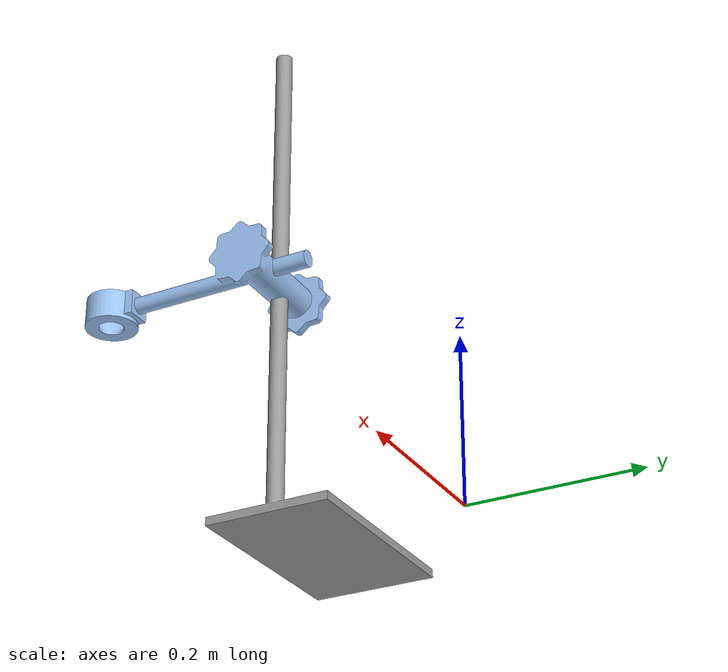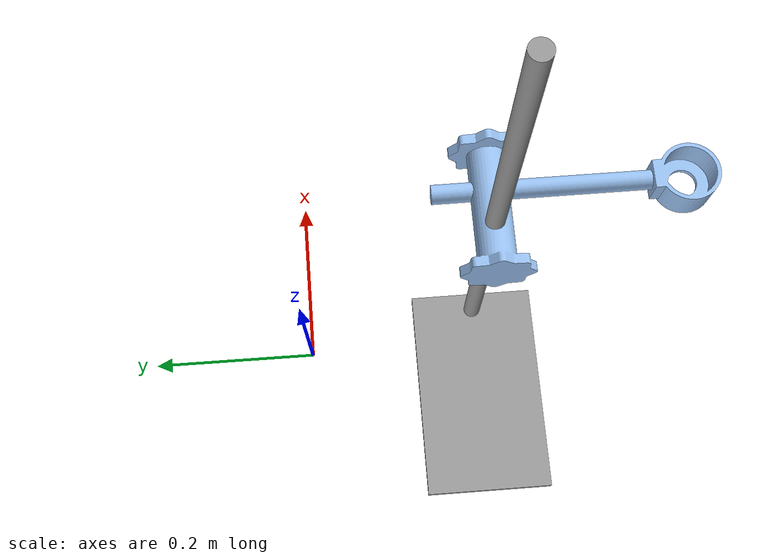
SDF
<?xml version='1.0'?>
<sdf version='1.7'>
  <model name='dispenser_holder_tube'>
    <link name='holder'>
      <self_collide>0</self_collide>
      <enable_wind>0</enable_wind>
      <kinematic>0</kinematic>
      <pose>0.04 -0.206 0.3 0 -0 1.5708</pose>
      <gravity>0</gravity>
      <inertial>
        <mass>0.2</mass>
        <pose>0 0 0 0 -0 0</pose>
        <inertia>
          <ixx>1</ixx>
          <ixy>0</ixy>
          <ixz>0</ixz>
          <iyy>1</iyy>
          <iyz>0</iyz>
          <izz>1</izz>
        </inertia>
      </inertial>
      <visual name='visual'>
        <geometry>
          <mesh>
            <uri>model://dispenser_holder_tube/meshes/dispenser_holder.stl</uri>
            <scale>1 1 1</scale>
          </mesh>
        </geometry>
        <material>
          <shader type='pixel'>
            <normal_map>__default__</normal_map>
          </shader>
          <script>
            <name></name>
            <uri></uri>
          </script>
          <ambient>0.6 0.757 0.945 1</ambient>
          <diffuse>0.6 0.757 0.945 1</diffuse>
          <specular>0 0 0 1</specular>
          <emissive>0 0 0 1</emissive>
        </material>
        <pose>0 0 0 0 -0 0</pose>
        <transparency>0</transparency>
        <cast_shadows>1</cast_shadows>
      </visual>
      <collision name='collision'>
        <laser_retro>0</laser_retro>
        <max_contacts>10</max_contacts>
        <pose>0 0 0 0 -0 0</pose>
        <geometry>
          <mesh>
            <uri>model://dispenser_holder_tube/meshes/dispenser_holder.stl</uri>
            <scale>1 1 1</scale>
          </mesh>
        </geometry>
        <surface>
          <friction>
            <ode>
              <mu>1</mu>
              <mu2>1</mu2>
              <fdir1>0 0 0</fdir1>
              <slip1>0</slip1>
              <slip2>0</slip2>
            </ode>
            <torsional>
              <coefficient>1</coefficient>
              <patch_radius>0</patch_radius>
              <surface_radius>0</surface_radius>
              <use_patch_radius>1</use_patch_radius>
              <ode>
                <slip>0</slip>
              </ode>
            </torsional>
          </friction>
          <bounce>
            <restitution_coefficient>0</restitution_coefficient>
            <threshold>1e+06</threshold>
          </bounce>
          <contact>
            <collide_without_contact>0</collide_without_contact>
            <collide_without_contact_bitmask>1</collide_without_contact_bitmask>
            <collide_bitmask>1</collide_bitmask>
            <ode>
              <soft_cfm>0</soft_cfm>
              <soft_erp>0.2</soft_erp>
              <kp>1e+13</kp>
              <kd>1</kd>
              <max_vel>0.01</max_vel>
              <min_depth>0</min_depth>
            </ode>
            <bullet>
              <split_impulse>1</split_impulse>
              <split_impulse_penetration_threshold>-0.01</split_impulse_penetration_threshold>
              <soft_cfm>0</soft_cfm>
              <soft_erp>0.2</soft_erp>
              <kp>1e+13</kp>
              <kd>1</kd>
            </bullet>
          </contact>
        </surface>
      </collision>
    </link>
    <link name='tripod'>
      <inertial>
        <mass>1</mass>
        <inertia>
          <ixx>0.166667</ixx>
          <ixy>0</ixy>
          <ixz>0</ixz>
          <iyy>0.166667</iyy>
          <iyz>0</iyz>
          <izz>0.166667</izz>
        </inertia>
        <pose>0 0 0 0 -0 0</pose>
      </inertial>
      <pose>0 0 0 0 -0 3.14159</pose>
      <self_collide>0</self_collide>
      <enable_wind>0</enable_wind>
      <kinematic>1</kinematic>
      <gravity>1</gravity>
      <visual name='visual'>
        <pose>0 0 0 0 -0 0</pose>
        <geometry>
          <mesh>
            <uri>model://dispenser_holder_tube/meshes/tripod.stl</uri>
            <scale>1 1 1</scale>
          </mesh>
        </geometry>
        <material>
          <lighting>1</lighting>
          <script>
            <uri>file://media/materials/scripts/gazebo.material</uri>
            <name>Gazebo/Grey</name>
          </script>
          <shader type='pixel'>
            <normal_map>__default__</normal_map>
          </shader>
          <emissive>0 0 0 1</emissive>
        </material>
        <transparency>0</transparency>
        <cast_shadows>1</cast_shadows>
      </visual>
      <collision name='collision'>
        <laser_retro>0</laser_retro>
        <max_contacts>0</max_contacts>
        <pose>0 0 0 0 0 0</pose>
        <geometry>
          <mesh>
            <uri>model://dispenser_holder_tube/meshes/tripod.stl</uri>
            <scale>1 1 1</scale>
          </mesh>
        </geometry>
        <surface>
          <friction>
            <ode>
              <mu>1</mu>
              <mu2>1</mu2>
              <fdir1>0 0 0</fdir1>
              <slip1>0</slip1>
              <slip2>0</slip2>
            </ode>
            <torsional>
              <coefficient>1</coefficient>
              <patch_radius>0</patch_radius>
              <surface_radius>0</surface_radius>
              <use_patch_radius>1</use_patch_radius>
              <ode>
                <slip>0</slip>
              </ode>
            </torsional>
          </friction>
          <bounce>
            <restitution_coefficient>0</restitution_coefficient>
            <threshold>1e+06</threshold>
          </bounce>
          <contact>
            <collide_without_contact>0</collide_without_contact>
            <collide_without_contact_bitmask>1</collide_without_contact_bitmask>
            <collide_bitmask>1</collide_bitmask>
            <ode>
              <soft_cfm>0</soft_cfm>
              <soft_erp>0.2</soft_erp>
              <kp>1e+13</kp>
              <kd>1</kd>
              <max_vel>0.01</max_vel>
              <min_depth>0</min_depth>
            </ode>
            <bullet>
              <split_impulse>1</split_impulse>
              <split_impulse_penetration_threshold>-0.01</split_impulse_penetration_threshold>
              <soft_cfm>0</soft_cfm>
              <soft_erp>0.2</soft_erp>
              <kp>1e+13</kp>
              <kd>1</kd>
            </bullet>
          </contact>
        </surface>
      </collision>
    </link>
    <joint name='tripod_holder_z' type='prismatic'>
      <parent>tripod</parent>
      <child>holder</child>
      <pose>0.08 0.02 0.13 0 -0 0</pose>
      <axis>
        <xyz>0 0 1</xyz>
        <limit>
          <lower>-1</lower>
          <upper>1</upper>
          <effort>-1</effort>
          <velocity>-1</velocity>
        </limit>
        <dynamics>
          <spring_reference>0</spring_reference>
          <spring_stiffness>0</spring_stiffness>
          <damping>0</damping>
          <friction>50</friction>
        </dynamics>
      </axis>
      <physics>
        <ode>
          <limit>
            <cfm>0</cfm>
            <erp>0.2</erp>
          </limit>
          <suspension>
            <cfm>0</cfm>
            <erp>0.2</erp>
          </suspension>
        </ode>
      </physics>
    </joint>
    <static>0</static>
    <allow_auto_disable>1</allow_auto_disable>
  </model>
</sdf>
